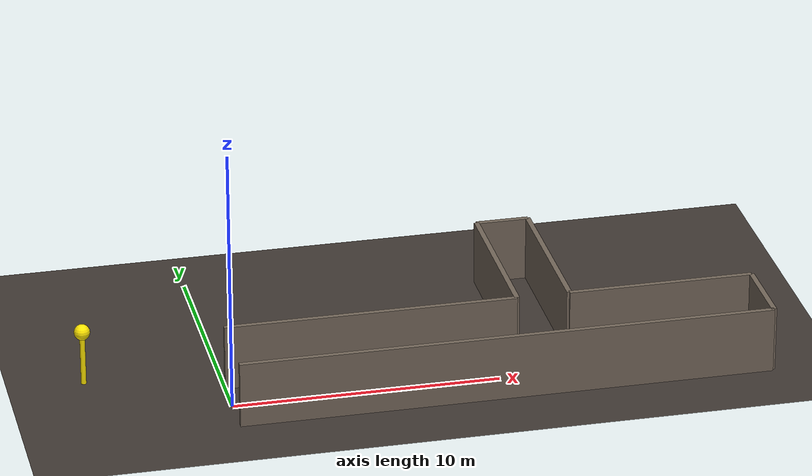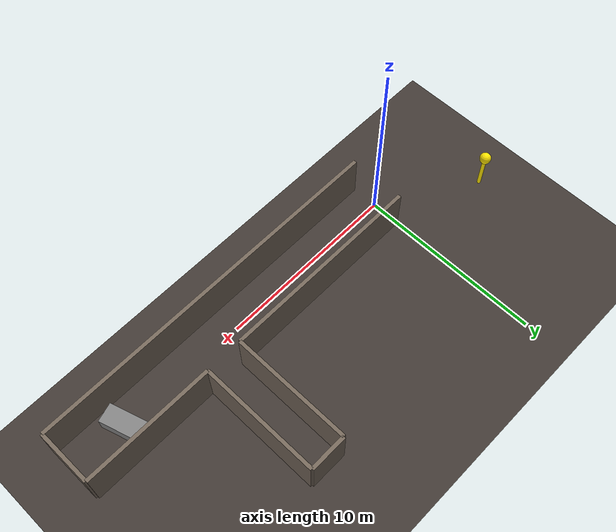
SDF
<sdf version="1.9">
 <world name="mine_tunnel">
  <physics name="1ms" type="ignored">
   <max_step_size>0.004</max_step_size>
   <real_time_factor>1.0</real_time_factor>
  </physics>
  <plugin filename="gz-sim-physics-system" name="gz::sim::systems::Physics"/>
  <plugin filename="gz-sim-user-commands-system" name="gz::sim::systems::UserCommands"/>
  <plugin filename="gz-sim-scene-broadcaster-system" name="gz::sim::systems::SceneBroadcaster"/>
  <plugin filename="gz-sim-sensors-system" name="gz::sim::systems::Sensors">
   <render_engine>ogre2</render_engine>
  </plugin>
  <plugin filename="gz-sim-imu-system" name="gz::sim::systems::Imu"/>
  <plugin filename="gz-sim-air-pressure-system" name="gz::sim::systems::AirPressure"/>
  <plugin filename="gz-sim-magnetometer-system" name="gz::sim::systems::Magnetometer"/>
  <plugin filename="gz-sim-navsat-system" name="gz::sim::systems::NavSat"/>
  <spherical_coordinates>
   <surface_model>EARTH_WGS84</surface_model>
   <latitude_deg>36.8065</latitude_deg>
   <longitude_deg>10.1815</longitude_deg>
   <elevation>0</elevation>
   <heading_deg>0</heading_deg>
  </spherical_coordinates>
  <light type="directional" name="sun">
   <pose>0 0 10 0 0 0</pose>
   <diffuse>0.6 0.6 0.6 1</diffuse>
   <specular>0.2 0.2 0.2 1</specular>
   <direction>-0.5 0.1 -0.9</direction>
  </light>
  <model name="ground">
   <static>true</static>
   <link name="link">
    <collision name="c"><geometry><plane><normal>0 0 1</normal><size>60 60</size></plane></geometry></collision>
    <visual name="v">
     <geometry><plane><normal>0 0 1</normal><size>60 60</size></plane></geometry>
     <material><ambient>0.25 0.22 0.2 1</ambient><diffuse>0.25 0.22 0.2 1</diffuse></material>
    </visual>
   </link>
  </model>
  <model name="tunnel">
   <static>true</static>
   <link name="wall_right">
    <pose>10 -1.5 1.25 0 0 0</pose>
    <collision name="c"><geometry><box><size>20 0.2 2.5</size></box></geometry></collision>
    <visual name="v">
     <geometry><box><size>20 0.2 2.5</size></box></geometry>
     <material><ambient>0.45 0.4 0.35 1</ambient><diffuse>0.45 0.4 0.35 1</diffuse></material>
    </visual>
   </link>
   <link name="wall_left_a">
    <pose>5.5 1.5 1.25 0 0 0</pose>
    <collision name="c"><geometry><box><size>11 0.2 2.5</size></box></geometry></collision>
    <visual name="v">
     <geometry><box><size>11 0.2 2.5</size></box></geometry>
     <material><ambient>0.45 0.4 0.35 1</ambient><diffuse>0.45 0.4 0.35 1</diffuse></material>
    </visual>
   </link>
   <link name="wall_left_b">
    <pose>16.5 1.5 1.25 0 0 0</pose>
    <collision name="c"><geometry><box><size>7 0.2 2.5</size></box></geometry></collision>
    <visual name="v">
     <geometry><box><size>7 0.2 2.5</size></box></geometry>
     <material><ambient>0.45 0.4 0.35 1</ambient><diffuse>0.45 0.4 0.35 1</diffuse></material>
    </visual>
   </link>
   <link name="wall_end">
    <pose>20 0 1.25 0 0 0</pose>
    <collision name="c"><geometry><box><size>0.2 3 2.5</size></box></geometry></collision>
    <visual name="v">
     <geometry><box><size>0.2 3 2.5</size></box></geometry>
     <material><ambient>0.45 0.4 0.35 1</ambient><diffuse>0.45 0.4 0.35 1</diffuse></material>
    </visual>
   </link>
   <link name="branch_w1">
    <pose>11 4.75 1.25 0 0 0</pose>
    <collision name="c"><geometry><box><size>0.2 6.5 2.5</size></box></geometry></collision>
    <visual name="v">
     <geometry><box><size>0.2 6.5 2.5</size></box></geometry>
     <material><ambient>0.45 0.4 0.35 1</ambient><diffuse>0.45 0.4 0.35 1</diffuse></material>
    </visual>
   </link>
   <link name="branch_w2">
    <pose>13 4.75 1.25 0 0 0</pose>
    <collision name="c"><geometry><box><size>0.2 6.5 2.5</size></box></geometry></collision>
    <visual name="v">
     <geometry><box><size>0.2 6.5 2.5</size></box></geometry>
     <material><ambient>0.45 0.4 0.35 1</ambient><diffuse>0.45 0.4 0.35 1</diffuse></material>
    </visual>
   </link>
   <link name="branch_end">
    <pose>12 8 1.25 0 0 0</pose>
    <collision name="c"><geometry><box><size>2 0.2 2.5</size></box></geometry></collision>
    <visual name="v">
     <geometry><box><size>2 0.2 2.5</size></box></geometry>
     <material><ambient>0.45 0.4 0.35 1</ambient><diffuse>0.45 0.4 0.35 1</diffuse></material>
    </visual>
   </link>
  </model>
  <model name="event_rubble">
   <static>true</static>
   <pose>17 0 0.4 0 0 0.3</pose>
   <link name="link">
    <collision name="c"><geometry><box><size>1 2.2 0.8</size></box></geometry></collision>
    <visual name="v">
     <geometry><box><size>1 2.2 0.8</size></box></geometry>
     <material><ambient>0.5 0.5 0.5 1</ambient><diffuse>0.5 0.5 0.5 1</diffuse></material>
    </visual>
   </link>
  </model>
  <model name="outside_gateway">
   <static>true</static>
   <pose>-5 3 1 0 0 0</pose>
   <link name="l">
    <visual name="mast">
     <geometry><cylinder><radius>0.1</radius><length>2</length></cylinder></geometry>
     <material><ambient>1 0.9 0 1</ambient><diffuse>1 0.9 0 1</diffuse></material>
    </visual>
    <visual name="dish">
     <pose>0 0 1.1 0 0 0</pose>
     <geometry><sphere><radius>0.3</radius></sphere></geometry>
     <material><ambient>1 0.9 0 1</ambient><diffuse>1 0.9 0 1</diffuse></material>
    </visual>
   </link>
  </model>
  <model name="event_fire">
   <static>true</static>
   <pose>8 0.5 0 0 0 0</pose>
   <link name="l">
    <particle_emitter name="flames" type="point">
     <emitting>true</emitting>
     <pose>0 0 0.1 0 0 0</pose>
     <size>0.4 0.4 0.1</size>
     <rate>40</rate>
     <lifetime>1.2</lifetime>
     <min_velocity>0.6</min_velocity>
     <max_velocity>1.4</max_velocity>
     <scale_rate>0</scale_rate>
     <particle_size>0.35 0.35 0.35</particle_size>
     <color_start>1 0.6 0.1 0.9</color_start>
     <color_end>0.8 0.1 0 0</color_end>
    </particle_emitter>
    <light name="glow" type="point">
     <pose>0 0 0.6 0 0 0</pose>
     <diffuse>1 0.4 0.1 1</diffuse>
     <attenuation><range>6</range><linear>0.3</linear></attenuation>
    </light>
   </link>
  </model>
 </world>
</sdf>
